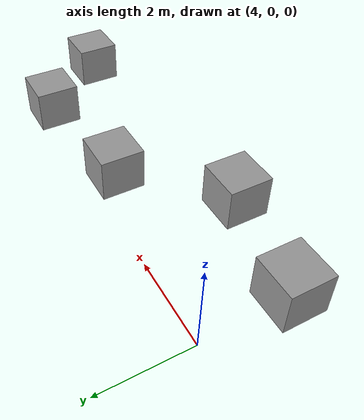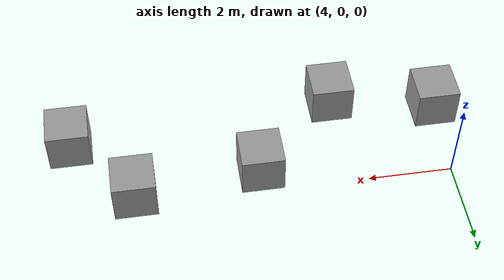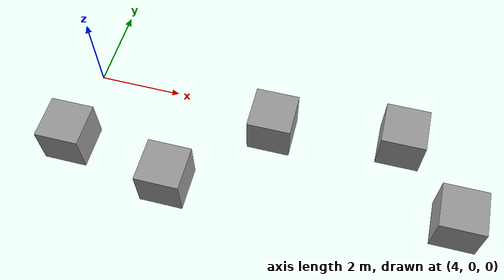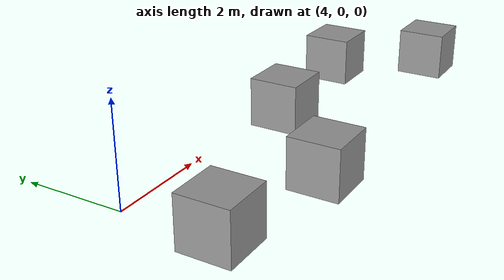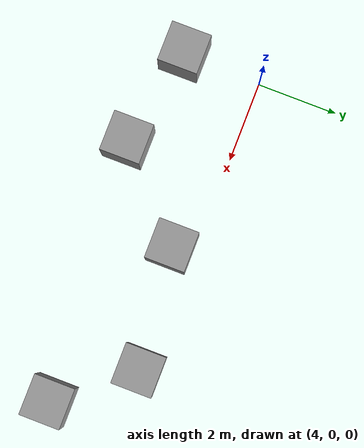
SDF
<sdf version="1.6">
 <world name="default">
  <scene><ambient>0.5 0.5 0.5 1</ambient><background>0.5 0.5 0.5 1</background><shadows>0</shadows></scene>
  <physics name="default_physics" default="0" type="ode">
   <ode>
    <solver>
     <type>quick</type>
     <iters>10</iters>
     <sor>1.3</sor>
     <use_dynamic_moi_rescaling>0</use_dynamic_moi_rescaling>
    </solver>
    <constraints>
     <cfm>0</cfm>
     <erp>0.2</erp>
     <contact_max_correcting_vel>10</contact_max_correcting_vel>
     <contact_surface_layer>0.001</contact_surface_layer>
    </constraints>
   </ode>
   <max_step_size>0.001</max_step_size>
   <real_time_factor>1</real_time_factor>
   <real_time_update_rate>1000</real_time_update_rate>
  </physics>
  <light name="directional_light_1" type="directional">
   <pose>0 20 20 0.1 0.1 0</pose>
   <diffuse>1 1 1 1</diffuse>
   <specular>1 1 1 1</specular>
   <attenuation><range>300</range></attenuation>
   <direction>0.1 0.1 -1</direction>
   <cast_shadows>0</cast_shadows>
  </light>
  <gravity>0 0 -9.81</gravity>
  <magnetic_field>6e-06 2.3e-05 -4.2e-05</magnetic_field>
  <atmosphere type="adiabatic"/>
  <spherical_coordinates>
   <surface_model>EARTH_WGS84</surface_model>
   <latitude_deg>0</latitude_deg>
   <longitude_deg>0</longitude_deg>
   <elevation>0</elevation>
   <heading_deg>0</heading_deg>
  </spherical_coordinates>
  <model name="unit_box_0">
   <pose>4.00602 -1.94663 0.499999 -1e-06 1e-06 4.5e-05</pose>
   <link name="link">
    <inertial>
     <mass>1</mass>
     <inertia>
      <ixx>0.166667</ixx>
      <ixy>0</ixy>
      <ixz>0</ixz>
      <iyy>0.166667</iyy>
      <iyz>0</iyz>
      <izz>0.166667</izz>
     </inertia>
    </inertial>
    <collision name="collision"><geometry><box><size>1 1 1</size></box></geometry></collision>
    <visual name="visual">
     <geometry><box><size>1 1 1</size></box></geometry>
     <material>
      <script><name>Gazebo/Grey</name><uri>file://media/materials/scripts/gazebo.material</uri></script>
     </material>
    </visual>
   </link>
  </model>
  <model name="unit_box_1">
   <pose>6.50511 -2.44896 0.499999 -2e-06 1e-06 7.5e-05</pose>
   <link name="link">
    <inertial>
     <mass>1</mass>
     <inertia>
      <ixx>0.166667</ixx>
      <ixy>0</ixy>
      <ixz>0</ixz>
      <iyy>0.166667</iyy>
      <iyz>0</iyz>
      <izz>0.166667</izz>
     </inertia>
    </inertial>
    <collision name="collision"><geometry><box><size>1 1 1</size></box></geometry></collision>
    <visual name="visual">
     <geometry><box><size>1 1 1</size></box></geometry>
     <material>
      <script><name>Gazebo/Grey</name><uri>file://media/materials/scripts/gazebo.material</uri></script>
     </material>
    </visual>
   </link>
  </model>
  <model name="unit_box_2">
   <pose>8.50737 -0.543091 0.5 2e-06 -4e-06 1e-05</pose>
   <link name="link">
    <inertial>
     <mass>1</mass>
     <inertia>
      <ixx>0.166667</ixx>
      <ixy>0</ixy>
      <ixz>0</ixz>
      <iyy>0.166667</iyy>
      <iyz>0</iyz>
      <izz>0.166667</izz>
     </inertia>
    </inertial>
    <collision name="collision"><geometry><box><size>1 1 1</size></box></geometry></collision>
    <visual name="visual">
     <geometry><box><size>1 1 1</size></box></geometry>
     <material>
      <script><name>Gazebo/Grey</name><uri>file://media/materials/scripts/gazebo.material</uri></script>
     </material>
    </visual>
   </link>
  </model>
  <model name="unit_box_3">
   <pose>11.4951 -0.220012 0.499996 6e-06 -1e-06 1.9e-05</pose>
   <link name="link">
    <inertial>
     <mass>1</mass>
     <inertia>
      <ixx>0.166667</ixx>
      <ixy>0</ixy>
      <ixz>0</ixz>
      <iyy>0.166667</iyy>
      <iyz>0</iyz>
      <izz>0.166667</izz>
     </inertia>
    </inertial>
    <collision name="collision"><geometry><box><size>1 1 1</size></box></geometry></collision>
    <visual name="visual">
     <geometry><box><size>1 1 1</size></box></geometry>
     <material>
      <script><name>Gazebo/Grey</name><uri>file://media/materials/scripts/gazebo.material</uri></script>
     </material>
    </visual>
   </link>
  </model>
  <model name="unit_box_4">
   <pose>12.9195 -1.93432 0.499997 -1e-06 5e-06 -1.1e-05</pose>
   <link name="link">
    <inertial>
     <mass>1</mass>
     <inertia>
      <ixx>0.166667</ixx>
      <ixy>0</ixy>
      <ixz>0</ixz>
      <iyy>0.166667</iyy>
      <iyz>0</iyz>
      <izz>0.166667</izz>
     </inertia>
    </inertial>
    <collision name="collision"><geometry><box><size>1 1 1</size></box></geometry></collision>
    <visual name="visual">
     <geometry><box><size>1 1 1</size></box></geometry>
     <material>
      <script><name>Gazebo/Grey</name><uri>file://media/materials/scripts/gazebo.material</uri></script>
     </material>
    </visual>
   </link>
  </model>
 </world>
</sdf>
